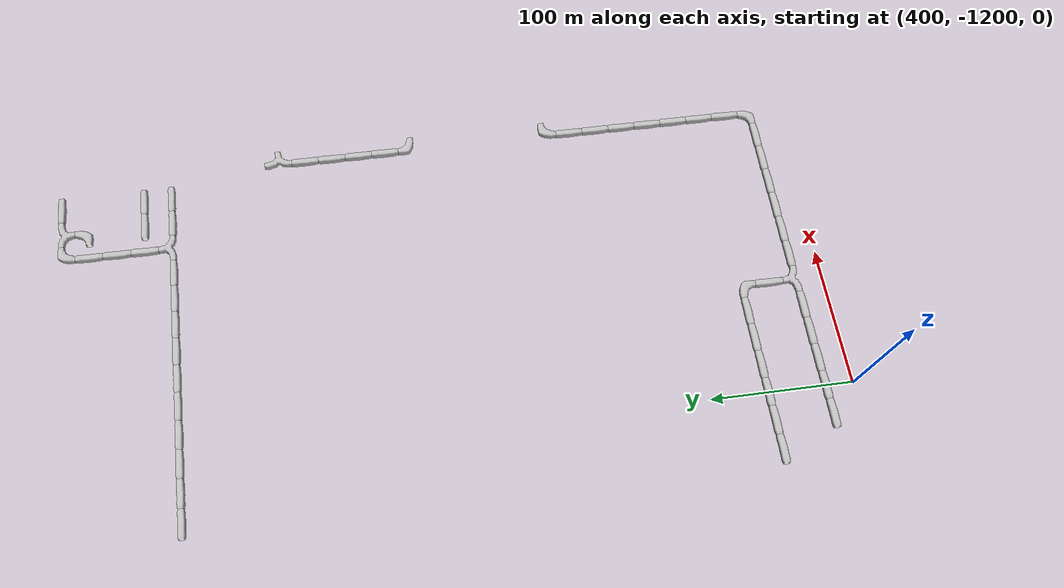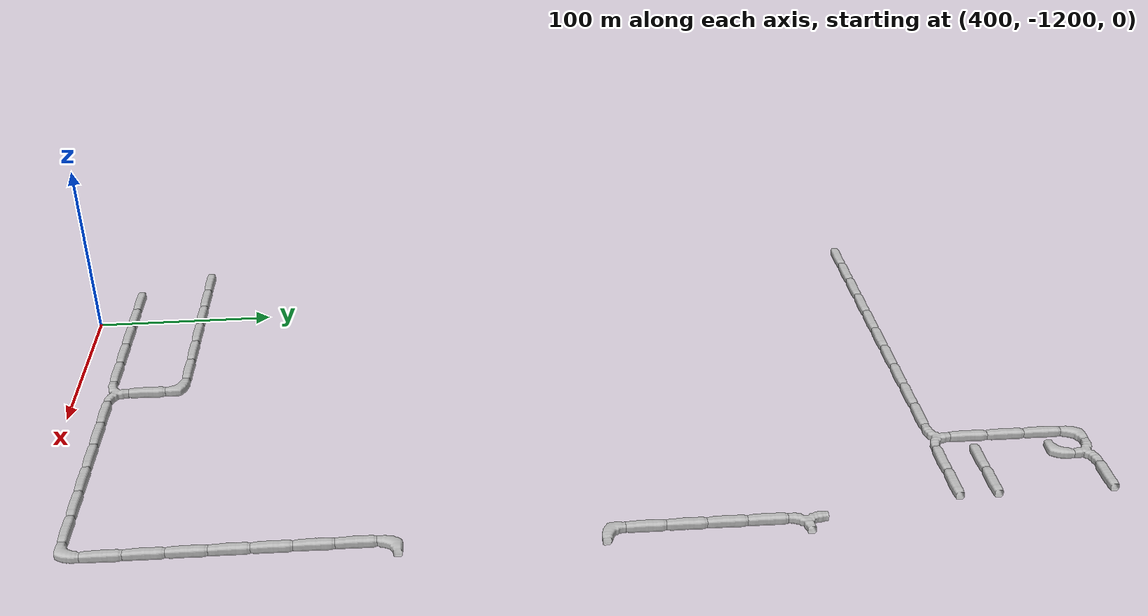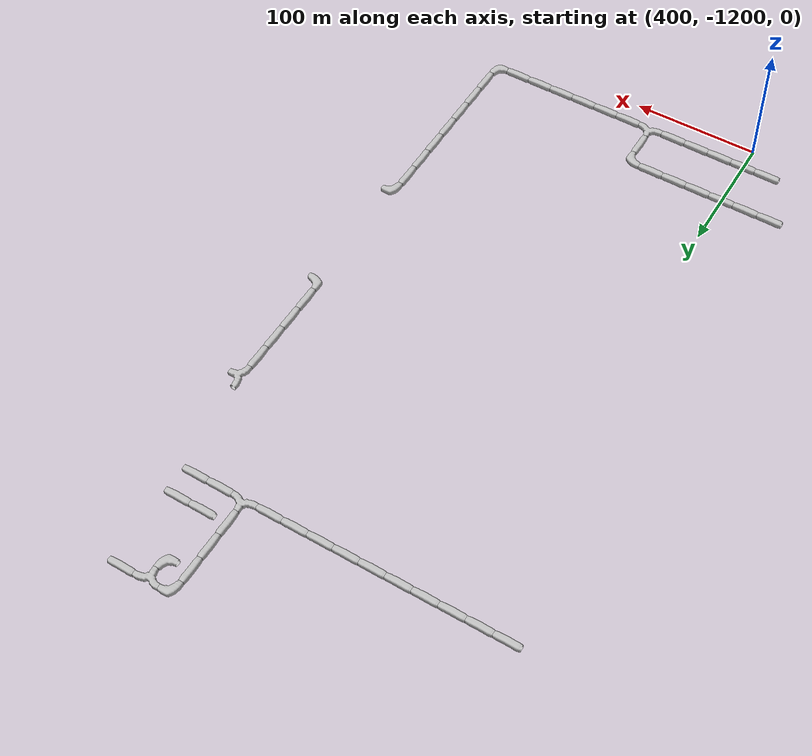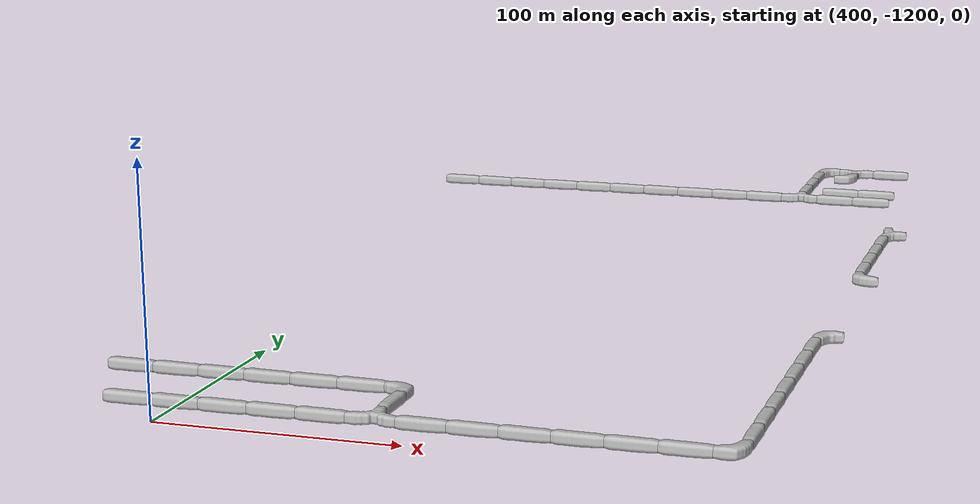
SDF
<sdf version="1.6">
 <world name="cave_32000_4">
  <include>
   <static>true</static>
   <name>cave_18_-37</name>
   <pose>360 -740 0 0 0 1.5707963267948966</pose>
   <uri>model://cave_straight_20m</uri>
  </include>
  <include>
   <static>true</static>
   <name>cave_19_-37</name>
   <pose>380 -740 0 0 0 1.5707963267948966</pose>
   <uri>model://cave_straight_20m</uri>
  </include>
  <include>
   <static>true</static>
   <name>cave_20_-37</name>
   <pose>400 -740 0 0 0 1.5707963267948966</pose>
   <uri>model://cave_straight_20m</uri>
  </include>
  <include>
   <static>true</static>
   <name>cave_21_-37</name>
   <pose>420 -740 0 0 0 1.5707963267948966</pose>
   <uri>model://cave_straight_20m</uri>
  </include>
  <include>
   <static>true</static>
   <name>cave_22_-37</name>
   <pose>440 -740 0 0 0 1.5707963267948966</pose>
   <uri>model://cave_straight_20m</uri>
  </include>
  <include>
   <static>true</static>
   <name>cave_23_-37</name>
   <pose>460 -740 0 0 0 1.5707963267948966</pose>
   <uri>model://cave_straight_20m</uri>
  </include>
  <include>
   <static>true</static>
   <name>cave_24_-37</name>
   <pose>480 -740 0 0 0 1.5707963267948966</pose>
   <uri>model://cave_straight_20m</uri>
  </include>
  <include>
   <static>true</static>
   <name>cave_25_-37</name>
   <pose>500 -740 0 0 0 1.5707963267948966</pose>
   <uri>model://cave_straight_20m</uri>
  </include>
  <include>
   <static>true</static>
   <name>cave_26_-37</name>
   <pose>520 -740 0 0 0 1.5707963267948966</pose>
   <uri>model://cave_straight_20m</uri>
  </include>
  <include>
   <static>true</static>
   <name>cave_27_-37</name>
   <pose>540 -740 0 0 0 1.5707963267948966</pose>
   <uri>model://cave_straight_20m</uri>
  </include>
  <include>
   <static>true</static>
   <name>cave_28_-37</name>
   <pose>560 -740 0 0 0 0.0</pose>
   <uri>model://cave_3way_20m</uri>
  </include>
  <include>
   <static>true</static>
   <name>cave_29_-37</name>
   <pose>580 -740 0 0 0 1.5707963267948966</pose>
   <uri>model://cave_straight_20m</uri>
  </include>
  <include>
   <static>true</static>
   <name>cave_30_-37</name>
   <pose>600 -740 0 0 0 1.5707963267948966</pose>
   <uri>model://cave_straight_20m</uri>
  </include>
  <include>
   <static>true</static>
   <name>cave_30_-36</name>
   <pose>600 -720 0 0 0 1.5707963267948966</pose>
   <uri>model://cave_straight_20m</uri>
  </include>
  <include>
   <static>true</static>
   <name>cave_29_-36</name>
   <pose>580 -720 0 0 0 1.5707963267948966</pose>
   <uri>model://cave_straight_20m</uri>
  </include>
  <include>
   <static>true</static>
   <name>cave_28_-36</name>
   <pose>560 -720 0 0 0 0.0</pose>
   <uri>model://cave_straight_20m</uri>
  </include>
  <include>
   <static>true</static>
   <name>cave_28_-35</name>
   <pose>560 -700 0 0 0 0.0</pose>
   <uri>model://cave_straight_20m</uri>
  </include>
  <include>
   <static>true</static>
   <name>cave_28_-34</name>
   <pose>560 -680 0 0 0 0.0</pose>
   <uri>model://cave_straight_20m</uri>
  </include>
  <include>
   <static>true</static>
   <name>cave_28_-33</name>
   <pose>560 -660 0 0 0 -1.5707963267948966</pose>
   <uri>model://cave_L_20m</uri>
  </include>
  <include>
   <static>true</static>
   <name>cave_29_-33</name>
   <pose>580 -660 0 0 0 3.141592653589793</pose>
   <uri>model://cave_3way_20m</uri>
  </include>
  <include>
   <static>true</static>
   <name>cave_30_-33</name>
   <pose>600 -660 0 0 0 1.5707963267948966</pose>
   <uri>model://cave_straight_20m</uri>
  </include>
  <include>
   <static>true</static>
   <name>cave_29_-34</name>
   <pose>580 -680 0 0 0 1.5707963267948966</pose>
   <uri>model://cave_L_20m</uri>
  </include>
  <include>
   <static>true</static>
   <name>cave_19_-59</name>
   <pose>380 -1180 0 0 0 1.5707963267948966</pose>
   <uri>model://cave_straight_20m</uri>
  </include>
  <include>
   <static>true</static>
   <name>cave_20_-59</name>
   <pose>400 -1180 0 0 0 1.5707963267948966</pose>
   <uri>model://cave_straight_20m</uri>
  </include>
  <include>
   <static>true</static>
   <name>cave_21_-59</name>
   <pose>420 -1180 0 0 0 1.5707963267948966</pose>
   <uri>model://cave_straight_20m</uri>
  </include>
  <include>
   <static>true</static>
   <name>cave_22_-59</name>
   <pose>440 -1180 0 0 0 1.5707963267948966</pose>
   <uri>model://cave_straight_20m</uri>
  </include>
  <include>
   <static>true</static>
   <name>cave_23_-59</name>
   <pose>460 -1180 0 0 0 1.5707963267948966</pose>
   <uri>model://cave_straight_20m</uri>
  </include>
  <include>
   <static>true</static>
   <name>cave_24_-59</name>
   <pose>480 -1180 0 0 0 0.0</pose>
   <uri>model://cave_3way_20m</uri>
  </include>
  <include>
   <static>true</static>
   <name>cave_25_-59</name>
   <pose>500 -1180 0 0 0 1.5707963267948966</pose>
   <uri>model://cave_straight_20m</uri>
  </include>
  <include>
   <static>true</static>
   <name>cave_26_-59</name>
   <pose>520 -1180 0 0 0 1.5707963267948966</pose>
   <uri>model://cave_straight_20m</uri>
  </include>
  <include>
   <static>true</static>
   <name>cave_27_-59</name>
   <pose>540 -1180 0 0 0 1.5707963267948966</pose>
   <uri>model://cave_straight_20m</uri>
  </include>
  <include>
   <static>true</static>
   <name>cave_28_-59</name>
   <pose>560 -1180 0 0 0 1.5707963267948966</pose>
   <uri>model://cave_straight_20m</uri>
  </include>
  <include>
   <static>true</static>
   <name>cave_29_-59</name>
   <pose>580 -1180 0 0 0 1.5707963267948966</pose>
   <uri>model://cave_straight_20m</uri>
  </include>
  <include>
   <static>true</static>
   <name>cave_30_-59</name>
   <pose>600 -1180 0 0 0 1.5707963267948966</pose>
   <uri>model://cave_straight_20m</uri>
  </include>
  <include>
   <static>true</static>
   <name>cave_31_-59</name>
   <pose>620 -1180 0 0 0 1.5707963267948966</pose>
   <uri>model://cave_L_20m</uri>
  </include>
  <include>
   <static>true</static>
   <name>cave_31_-58</name>
   <pose>620 -1160 0 0 0 0.0</pose>
   <uri>model://cave_straight_20m</uri>
  </include>
  <include>
   <static>true</static>
   <name>cave_31_-57</name>
   <pose>620 -1140 0 0 0 0.0</pose>
   <uri>model://cave_straight_20m</uri>
  </include>
  <include>
   <static>true</static>
   <name>cave_31_-56</name>
   <pose>620 -1120 0 0 0 0.0</pose>
   <uri>model://cave_straight_20m</uri>
  </include>
  <include>
   <static>true</static>
   <name>cave_31_-55</name>
   <pose>620 -1100 0 0 0 0.0</pose>
   <uri>model://cave_straight_20m</uri>
  </include>
  <include>
   <static>true</static>
   <name>cave_31_-54</name>
   <pose>620 -1080 0 0 0 0.0</pose>
   <uri>model://cave_straight_20m</uri>
  </include>
  <include>
   <static>true</static>
   <name>cave_31_-53</name>
   <pose>620 -1060 0 0 0 0.0</pose>
   <uri>model://cave_straight_20m</uri>
  </include>
  <include>
   <static>true</static>
   <name>cave_31_-52</name>
   <pose>620 -1040 0 0 0 0.0</pose>
   <uri>model://cave_straight_20m</uri>
  </include>
  <include>
   <static>true</static>
   <name>cave_31_-51</name>
   <pose>620 -1020 0 0 0 -1.5707963267948966</pose>
   <uri>model://cave_L_20m</uri>
  </include>
  <include>
   <static>true</static>
   <name>cave_31_-41</name>
   <pose>620 -820 0 0 0 -1.5707963267948966</pose>
   <uri>model://cave_3way_20m</uri>
  </include>
  <include>
   <static>true</static>
   <name>cave_31_-42</name>
   <pose>620 -840 0 0 0 0.0</pose>
   <uri>model://cave_straight_20m</uri>
  </include>
  <include>
   <static>true</static>
   <name>cave_31_-43</name>
   <pose>620 -860 0 0 0 0.0</pose>
   <uri>model://cave_straight_20m</uri>
  </include>
  <include>
   <static>true</static>
   <name>cave_31_-44</name>
   <pose>620 -880 0 0 0 0.0</pose>
   <uri>model://cave_straight_20m</uri>
  </include>
  <include>
   <static>true</static>
   <name>cave_31_-45</name>
   <pose>620 -900 0 0 0 0.0</pose>
   <uri>model://cave_straight_20m</uri>
  </include>
  <include>
   <static>true</static>
   <name>cave_31_-46</name>
   <pose>620 -920 0 0 0 0.0</pose>
   <uri>model://cave_L_20m</uri>
  </include>
  <include>
   <static>true</static>
   <name>cave_24_-58</name>
   <pose>480 -1160 0 0 0 0.0</pose>
   <uri>model://cave_straight_20m</uri>
  </include>
  <include>
   <static>true</static>
   <name>cave_24_-57</name>
   <pose>480 -1140 0 0 0 3.141592653589793</pose>
   <uri>model://cave_L_20m</uri>
  </include>
  <include>
   <static>true</static>
   <name>cave_23_-57</name>
   <pose>460 -1140 0 0 0 1.5707963267948966</pose>
   <uri>model://cave_straight_20m</uri>
  </include>
  <include>
   <static>true</static>
   <name>cave_22_-57</name>
   <pose>440 -1140 0 0 0 1.5707963267948966</pose>
   <uri>model://cave_straight_20m</uri>
  </include>
  <include>
   <static>true</static>
   <name>cave_21_-57</name>
   <pose>420 -1140 0 0 0 1.5707963267948966</pose>
   <uri>model://cave_straight_20m</uri>
  </include>
  <include>
   <static>true</static>
   <name>cave_20_-57</name>
   <pose>400 -1140 0 0 0 1.5707963267948966</pose>
   <uri>model://cave_straight_20m</uri>
  </include>
  <include>
   <static>true</static>
   <name>cave_19_-57</name>
   <pose>380 -1140 0 0 0 1.5707963267948966</pose>
   <uri>model://cave_straight_20m</uri>
  </include>
  <include>
   <static>true</static>
   <name>cave_18_-57</name>
   <pose>360 -1140 0 0 0 1.5707963267948966</pose>
   <uri>model://cave_straight_20m</uri>
  </include>
 </world>
</sdf>
